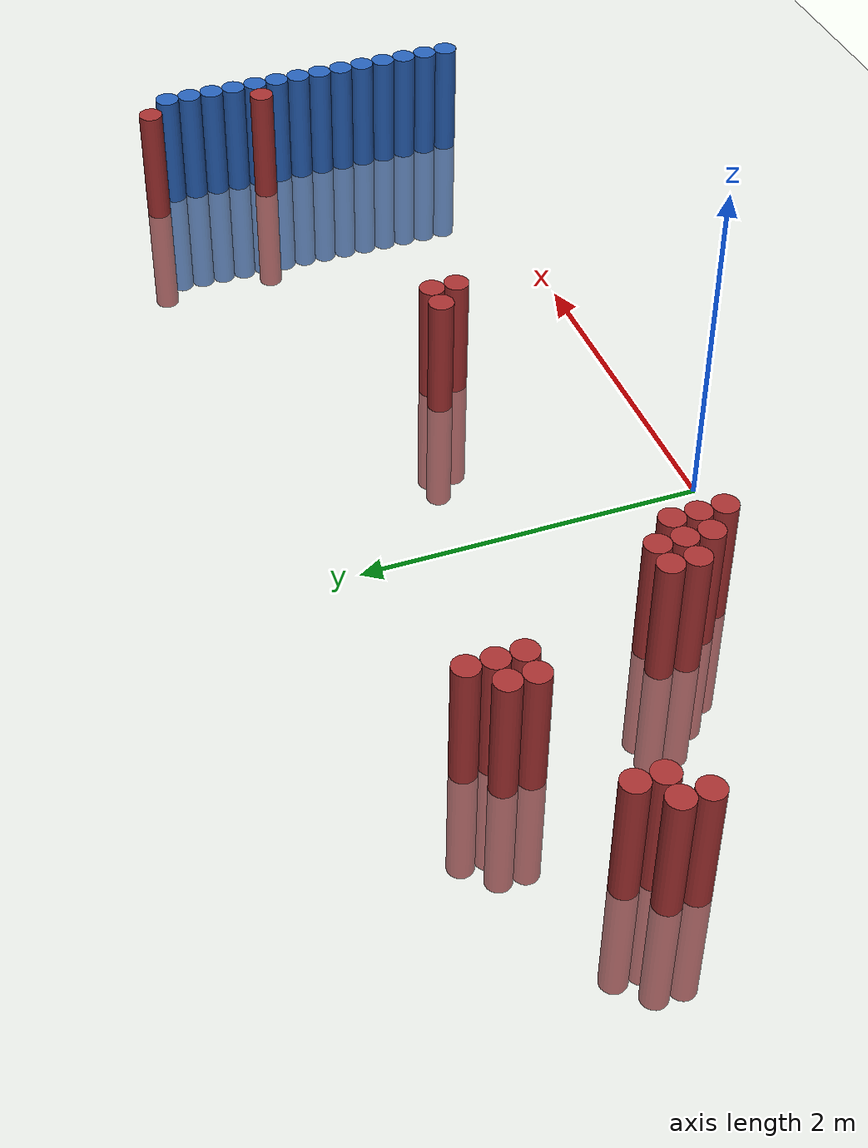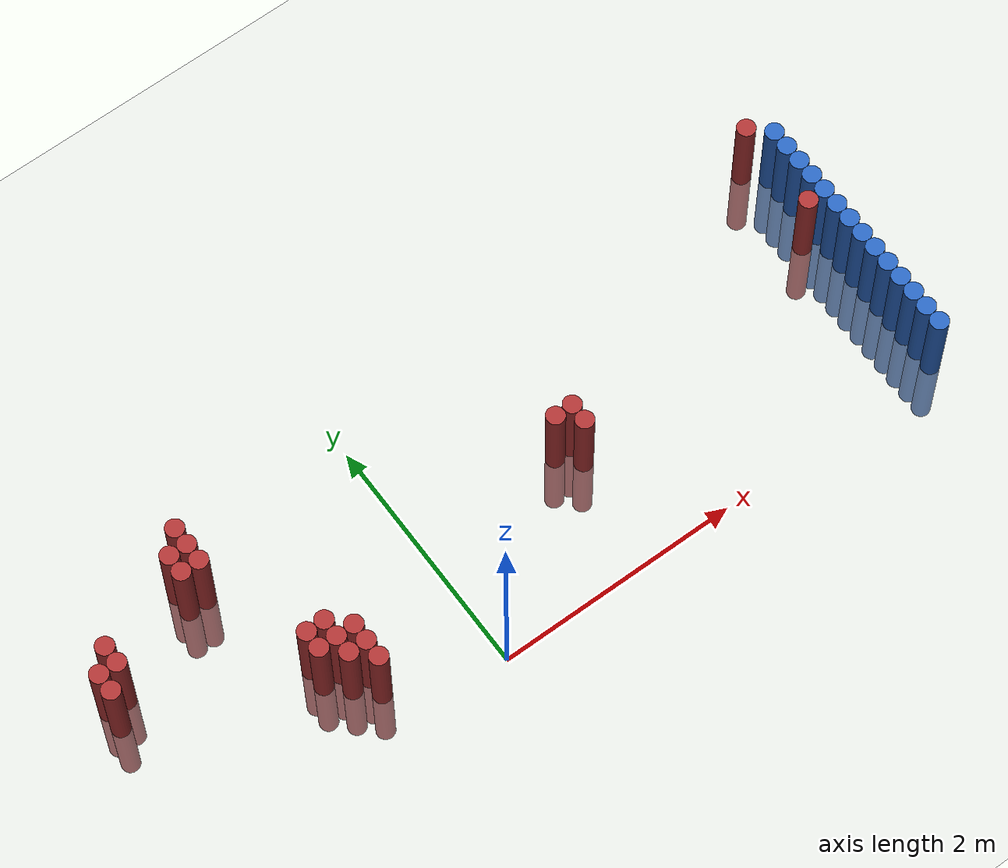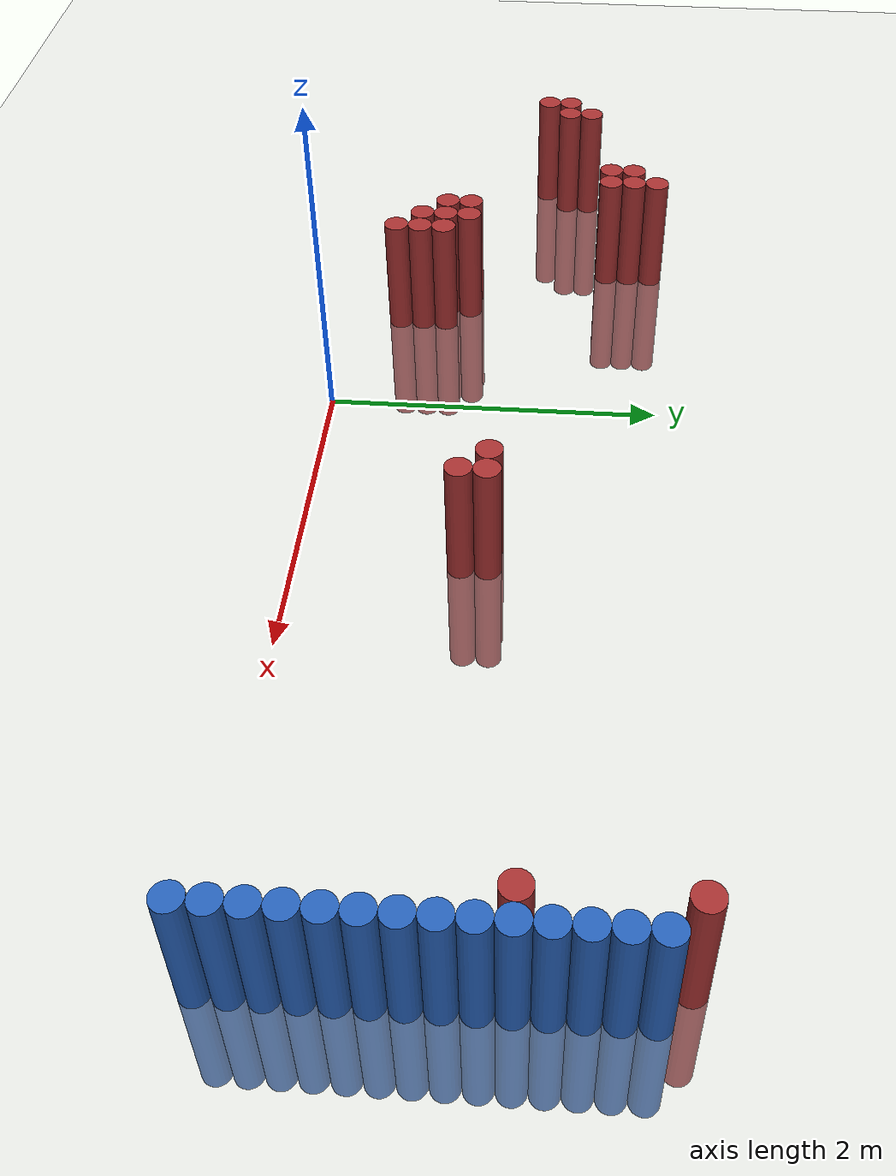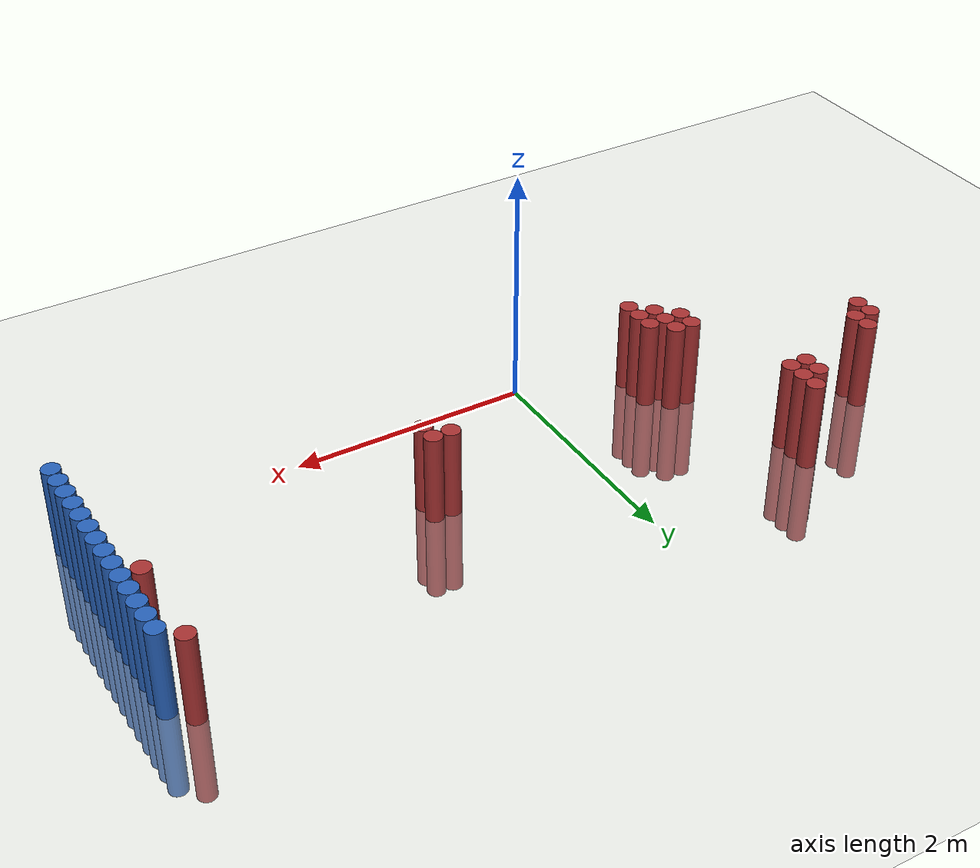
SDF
<sdf version="1.6">
 <world name="default">
  <model name="ground_plane">
   <static>1</static>
   <link name="link">
    <collision name="collision">
     <geometry><plane><normal>0 0 1</normal><size>100 100</size></plane></geometry>
     <surface><friction><ode><mu>100</mu><mu2>50</mu2></ode></friction></surface>
    </collision>
    <visual name="visual">
     <cast_shadows>0</cast_shadows>
     <geometry><plane><normal>0 0 1</normal><size>100 100</size></plane></geometry>
     <material>
      <script><uri>file://media/materials/scripts/gazebo.material</uri><name>Gazebo/Grey</name></script>
     </material>
    </visual>
   </link>
  </model>
  <model name="unit_cylinder_116">
   <static>1</static>
   <pose>3.925000 0.175000 0.000000 0.000000 0.000000 0.000000</pose>
   <link name="link">
    <inertial>
     <mass>1</mass>
     <inertia><ixx>0.145833</ixx><ixy>0</ixy><ixz>0</ixz><iyy>0.145833</iyy><iyz>0</iyz><izz>0.125</izz></inertia>
    </inertial>
    <collision name="collision">
     <geometry><cylinder><radius>0.075000</radius><length>1.5</length></cylinder></geometry>
    </collision>
    <visual name="visual">
     <geometry><cylinder><radius>0.075000</radius><length>1.5</length></cylinder></geometry>
     <material>
      <ambient>0.152000 0.379000 0.720000 1</ambient>
      <diffuse>0.152000 0.379000 0.720000 1</diffuse>
     </material>
     <material>
      <script><name>Gazebo/Grey</name><uri>file://media/materials/scripts/gazebo.material</uri></script>
     </material>
    </visual>
   </link>
  </model>
  <model name="unit_cylinder_118">
   <static>1</static>
   <pose>3.925000 0.325000 0.000000 0.000000 0.000000 0.000000</pose>
   <link name="link">
    <inertial>
     <mass>1</mass>
     <inertia><ixx>0.145833</ixx><ixy>0</ixy><ixz>0</ixz><iyy>0.145833</iyy><iyz>0</iyz><izz>0.125</izz></inertia>
    </inertial>
    <collision name="collision">
     <geometry><cylinder><radius>0.075000</radius><length>1.5</length></cylinder></geometry>
    </collision>
    <visual name="visual">
     <geometry><cylinder><radius>0.075000</radius><length>1.5</length></cylinder></geometry>
     <material>
      <ambient>0.152000 0.379000 0.720000 1</ambient>
      <diffuse>0.152000 0.379000 0.720000 1</diffuse>
     </material>
     <material>
      <script><name>Gazebo/Grey</name><uri>file://media/materials/scripts/gazebo.material</uri></script>
     </material>
    </visual>
   </link>
  </model>
  <model name="unit_cylinder_120">
   <static>1</static>
   <pose>3.925000 0.475000 0.000000 0.000000 0.000000 0.000000</pose>
   <link name="link">
    <inertial>
     <mass>1</mass>
     <inertia><ixx>0.145833</ixx><ixy>0</ixy><ixz>0</ixz><iyy>0.145833</iyy><iyz>0</iyz><izz>0.125</izz></inertia>
    </inertial>
    <collision name="collision">
     <geometry><cylinder><radius>0.075000</radius><length>1.5</length></cylinder></geometry>
    </collision>
    <visual name="visual">
     <geometry><cylinder><radius>0.075000</radius><length>1.5</length></cylinder></geometry>
     <material>
      <ambient>0.152000 0.379000 0.720000 1</ambient>
      <diffuse>0.152000 0.379000 0.720000 1</diffuse>
     </material>
     <material>
      <script><name>Gazebo/Grey</name><uri>file://media/materials/scripts/gazebo.material</uri></script>
     </material>
    </visual>
   </link>
  </model>
  <model name="unit_cylinder_122">
   <static>1</static>
   <pose>3.925000 0.625000 0.000000 0.000000 0.000000 0.000000</pose>
   <link name="link">
    <inertial>
     <mass>1</mass>
     <inertia><ixx>0.145833</ixx><ixy>0</ixy><ixz>0</ixz><iyy>0.145833</iyy><iyz>0</iyz><izz>0.125</izz></inertia>
    </inertial>
    <collision name="collision">
     <geometry><cylinder><radius>0.075000</radius><length>1.5</length></cylinder></geometry>
    </collision>
    <visual name="visual">
     <geometry><cylinder><radius>0.075000</radius><length>1.5</length></cylinder></geometry>
     <material>
      <ambient>0.152000 0.379000 0.720000 1</ambient>
      <diffuse>0.152000 0.379000 0.720000 1</diffuse>
     </material>
     <material>
      <script><name>Gazebo/Grey</name><uri>file://media/materials/scripts/gazebo.material</uri></script>
     </material>
    </visual>
   </link>
  </model>
  <model name="unit_cylinder_124">
   <static>1</static>
   <pose>3.925000 0.775000 0.000000 0.000000 0.000000 0.000000</pose>
   <link name="link">
    <inertial>
     <mass>1</mass>
     <inertia><ixx>0.145833</ixx><ixy>0</ixy><ixz>0</ixz><iyy>0.145833</iyy><iyz>0</iyz><izz>0.125</izz></inertia>
    </inertial>
    <collision name="collision">
     <geometry><cylinder><radius>0.075000</radius><length>1.5</length></cylinder></geometry>
    </collision>
    <visual name="visual">
     <geometry><cylinder><radius>0.075000</radius><length>1.5</length></cylinder></geometry>
     <material>
      <ambient>0.152000 0.379000 0.720000 1</ambient>
      <diffuse>0.152000 0.379000 0.720000 1</diffuse>
     </material>
     <material>
      <script><name>Gazebo/Grey</name><uri>file://media/materials/scripts/gazebo.material</uri></script>
     </material>
    </visual>
   </link>
  </model>
  <model name="unit_cylinder_126">
   <static>1</static>
   <pose>3.925000 0.925000 0.000000 0.000000 0.000000 0.000000</pose>
   <link name="link">
    <inertial>
     <mass>1</mass>
     <inertia><ixx>0.145833</ixx><ixy>0</ixy><ixz>0</ixz><iyy>0.145833</iyy><iyz>0</iyz><izz>0.125</izz></inertia>
    </inertial>
    <collision name="collision">
     <geometry><cylinder><radius>0.075000</radius><length>1.5</length></cylinder></geometry>
    </collision>
    <visual name="visual">
     <geometry><cylinder><radius>0.075000</radius><length>1.5</length></cylinder></geometry>
     <material>
      <ambient>0.152000 0.379000 0.720000 1</ambient>
      <diffuse>0.152000 0.379000 0.720000 1</diffuse>
     </material>
     <material>
      <script><name>Gazebo/Grey</name><uri>file://media/materials/scripts/gazebo.material</uri></script>
     </material>
    </visual>
   </link>
  </model>
  <model name="unit_cylinder_128">
   <static>1</static>
   <pose>3.925000 1.075000 0.000000 0.000000 0.000000 0.000000</pose>
   <link name="link">
    <inertial>
     <mass>1</mass>
     <inertia><ixx>0.145833</ixx><ixy>0</ixy><ixz>0</ixz><iyy>0.145833</iyy><iyz>0</iyz><izz>0.125</izz></inertia>
    </inertial>
    <collision name="collision">
     <geometry><cylinder><radius>0.075000</radius><length>1.5</length></cylinder></geometry>
    </collision>
    <visual name="visual">
     <geometry><cylinder><radius>0.075000</radius><length>1.5</length></cylinder></geometry>
     <material>
      <ambient>0.152000 0.379000 0.720000 1</ambient>
      <diffuse>0.152000 0.379000 0.720000 1</diffuse>
     </material>
     <material>
      <script><name>Gazebo/Grey</name><uri>file://media/materials/scripts/gazebo.material</uri></script>
     </material>
    </visual>
   </link>
  </model>
  <model name="unit_cylinder_130">
   <static>1</static>
   <pose>3.925000 1.225000 0.000000 0.000000 0.000000 0.000000</pose>
   <link name="link">
    <inertial>
     <mass>1</mass>
     <inertia><ixx>0.145833</ixx><ixy>0</ixy><ixz>0</ixz><iyy>0.145833</iyy><iyz>0</iyz><izz>0.125</izz></inertia>
    </inertial>
    <collision name="collision">
     <geometry><cylinder><radius>0.075000</radius><length>1.5</length></cylinder></geometry>
    </collision>
    <visual name="visual">
     <geometry><cylinder><radius>0.075000</radius><length>1.5</length></cylinder></geometry>
     <material>
      <ambient>0.152000 0.379000 0.720000 1</ambient>
      <diffuse>0.152000 0.379000 0.720000 1</diffuse>
     </material>
     <material>
      <script><name>Gazebo/Grey</name><uri>file://media/materials/scripts/gazebo.material</uri></script>
     </material>
    </visual>
   </link>
  </model>
  <model name="unit_cylinder_132">
   <static>1</static>
   <pose>3.925000 1.375000 0.000000 0.000000 0.000000 0.000000</pose>
   <link name="link">
    <inertial>
     <mass>1</mass>
     <inertia><ixx>0.145833</ixx><ixy>0</ixy><ixz>0</ixz><iyy>0.145833</iyy><iyz>0</iyz><izz>0.125</izz></inertia>
    </inertial>
    <collision name="collision">
     <geometry><cylinder><radius>0.075000</radius><length>1.5</length></cylinder></geometry>
    </collision>
    <visual name="visual">
     <geometry><cylinder><radius>0.075000</radius><length>1.5</length></cylinder></geometry>
     <material>
      <ambient>0.152000 0.379000 0.720000 1</ambient>
      <diffuse>0.152000 0.379000 0.720000 1</diffuse>
     </material>
     <material>
      <script><name>Gazebo/Grey</name><uri>file://media/materials/scripts/gazebo.material</uri></script>
     </material>
    </visual>
   </link>
  </model>
  <model name="unit_cylinder_134">
   <static>1</static>
   <pose>3.925000 1.525000 0.000000 0.000000 0.000000 0.000000</pose>
   <link name="link">
    <inertial>
     <mass>1</mass>
     <inertia><ixx>0.145833</ixx><ixy>0</ixy><ixz>0</ixz><iyy>0.145833</iyy><iyz>0</iyz><izz>0.125</izz></inertia>
    </inertial>
    <collision name="collision">
     <geometry><cylinder><radius>0.075000</radius><length>1.5</length></cylinder></geometry>
    </collision>
    <visual name="visual">
     <geometry><cylinder><radius>0.075000</radius><length>1.5</length></cylinder></geometry>
     <material>
      <ambient>0.152000 0.379000 0.720000 1</ambient>
      <diffuse>0.152000 0.379000 0.720000 1</diffuse>
     </material>
     <material>
      <script><name>Gazebo/Grey</name><uri>file://media/materials/scripts/gazebo.material</uri></script>
     </material>
    </visual>
   </link>
  </model>
  <model name="unit_cylinder_136">
   <static>1</static>
   <pose>3.925000 1.675000 0.000000 0.000000 0.000000 0.000000</pose>
   <link name="link">
    <inertial>
     <mass>1</mass>
     <inertia><ixx>0.145833</ixx><ixy>0</ixy><ixz>0</ixz><iyy>0.145833</iyy><iyz>0</iyz><izz>0.125</izz></inertia>
    </inertial>
    <collision name="collision">
     <geometry><cylinder><radius>0.075000</radius><length>1.5</length></cylinder></geometry>
    </collision>
    <visual name="visual">
     <geometry><cylinder><radius>0.075000</radius><length>1.5</length></cylinder></geometry>
     <material>
      <ambient>0.152000 0.379000 0.720000 1</ambient>
      <diffuse>0.152000 0.379000 0.720000 1</diffuse>
     </material>
     <material>
      <script><name>Gazebo/Grey</name><uri>file://media/materials/scripts/gazebo.material</uri></script>
     </material>
    </visual>
   </link>
  </model>
  <model name="unit_cylinder_138">
   <static>1</static>
   <pose>3.925000 1.825000 0.000000 0.000000 0.000000 0.000000</pose>
   <link name="link">
    <inertial>
     <mass>1</mass>
     <inertia><ixx>0.145833</ixx><ixy>0</ixy><ixz>0</ixz><iyy>0.145833</iyy><iyz>0</iyz><izz>0.125</izz></inertia>
    </inertial>
    <collision name="collision">
     <geometry><cylinder><radius>0.075000</radius><length>1.5</length></cylinder></geometry>
    </collision>
    <visual name="visual">
     <geometry><cylinder><radius>0.075000</radius><length>1.5</length></cylinder></geometry>
     <material>
      <ambient>0.152000 0.379000 0.720000 1</ambient>
      <diffuse>0.152000 0.379000 0.720000 1</diffuse>
     </material>
     <material>
      <script><name>Gazebo/Grey</name><uri>file://media/materials/scripts/gazebo.material</uri></script>
     </material>
    </visual>
   </link>
  </model>
  <model name="unit_cylinder_140">
   <static>1</static>
   <pose>3.925000 1.975000 0.000000 0.000000 0.000000 0.000000</pose>
   <link name="link">
    <inertial>
     <mass>1</mass>
     <inertia><ixx>0.145833</ixx><ixy>0</ixy><ixz>0</ixz><iyy>0.145833</iyy><iyz>0</iyz><izz>0.125</izz></inertia>
    </inertial>
    <collision name="collision">
     <geometry><cylinder><radius>0.075000</radius><length>1.5</length></cylinder></geometry>
    </collision>
    <visual name="visual">
     <geometry><cylinder><radius>0.075000</radius><length>1.5</length></cylinder></geometry>
     <material>
      <ambient>0.152000 0.379000 0.720000 1</ambient>
      <diffuse>0.152000 0.379000 0.720000 1</diffuse>
     </material>
     <material>
      <script><name>Gazebo/Grey</name><uri>file://media/materials/scripts/gazebo.material</uri></script>
     </material>
    </visual>
   </link>
  </model>
  <model name="unit_cylinder_276">
   <static>1</static>
   <pose>-2.525000 1.225000 0.000000 0.000000 0.000000 0.000000</pose>
   <link name="link">
    <inertial>
     <mass>1</mass>
     <inertia><ixx>0.145833</ixx><ixy>0</ixy><ixz>0</ixz><iyy>0.145833</iyy><iyz>0</iyz><izz>0.125</izz></inertia>
    </inertial>
    <collision name="collision">
     <geometry><cylinder><radius>0.075000</radius><length>1.5</length></cylinder></geometry>
    </collision>
    <visual name="visual">
     <geometry><cylinder><radius>0.075000</radius><length>1.5</length></cylinder></geometry>
     <material>
      <ambient>0.648000 0.192000 0.192000 1</ambient>
      <diffuse>0.648000 0.192000 0.192000 1</diffuse>
     </material>
     <material>
      <script><name>Gazebo/Grey</name><uri>file://media/materials/scripts/gazebo.material</uri></script>
     </material>
    </visual>
   </link>
  </model>
  <model name="unit_cylinder_277">
   <static>1</static>
   <pose>-2.525000 1.375000 0.000000 0.000000 0.000000 0.000000</pose>
   <link name="link">
    <inertial>
     <mass>1</mass>
     <inertia><ixx>0.145833</ixx><ixy>0</ixy><ixz>0</ixz><iyy>0.145833</iyy><iyz>0</iyz><izz>0.125</izz></inertia>
    </inertial>
    <collision name="collision">
     <geometry><cylinder><radius>0.075000</radius><length>1.5</length></cylinder></geometry>
    </collision>
    <visual name="visual">
     <geometry><cylinder><radius>0.075000</radius><length>1.5</length></cylinder></geometry>
     <material>
      <ambient>0.648000 0.192000 0.192000 1</ambient>
      <diffuse>0.648000 0.192000 0.192000 1</diffuse>
     </material>
     <material>
      <script><name>Gazebo/Grey</name><uri>file://media/materials/scripts/gazebo.material</uri></script>
     </material>
    </visual>
   </link>
  </model>
  <model name="unit_cylinder_278">
   <static>1</static>
   <pose>-2.375000 1.375000 0.000000 0.000000 0.000000 0.000000</pose>
   <link name="link">
    <inertial>
     <mass>1</mass>
     <inertia><ixx>0.145833</ixx><ixy>0</ixy><ixz>0</ixz><iyy>0.145833</iyy><iyz>0</iyz><izz>0.125</izz></inertia>
    </inertial>
    <collision name="collision">
     <geometry><cylinder><radius>0.075000</radius><length>1.5</length></cylinder></geometry>
    </collision>
    <visual name="visual">
     <geometry><cylinder><radius>0.075000</radius><length>1.5</length></cylinder></geometry>
     <material>
      <ambient>0.648000 0.192000 0.192000 1</ambient>
      <diffuse>0.648000 0.192000 0.192000 1</diffuse>
     </material>
     <material>
      <script><name>Gazebo/Grey</name><uri>file://media/materials/scripts/gazebo.material</uri></script>
     </material>
    </visual>
   </link>
  </model>
  <model name="unit_cylinder_279">
   <static>1</static>
   <pose>-2.375000 1.525000 0.000000 0.000000 0.000000 0.000000</pose>
   <link name="link">
    <inertial>
     <mass>1</mass>
     <inertia><ixx>0.145833</ixx><ixy>0</ixy><ixz>0</ixz><iyy>0.145833</iyy><iyz>0</iyz><izz>0.125</izz></inertia>
    </inertial>
    <collision name="collision">
     <geometry><cylinder><radius>0.075000</radius><length>1.5</length></cylinder></geometry>
    </collision>
    <visual name="visual">
     <geometry><cylinder><radius>0.075000</radius><length>1.5</length></cylinder></geometry>
     <material>
      <ambient>0.648000 0.192000 0.192000 1</ambient>
      <diffuse>0.648000 0.192000 0.192000 1</diffuse>
     </material>
     <material>
      <script><name>Gazebo/Grey</name><uri>file://media/materials/scripts/gazebo.material</uri></script>
     </material>
    </visual>
   </link>
  </model>
  <model name="unit_cylinder_280">
   <static>1</static>
   <pose>-1.625000 1.675000 0.000000 0.000000 0.000000 0.000000</pose>
   <link name="link">
    <inertial>
     <mass>1</mass>
     <inertia><ixx>0.145833</ixx><ixy>0</ixy><ixz>0</ixz><iyy>0.145833</iyy><iyz>0</iyz><izz>0.125</izz></inertia>
    </inertial>
    <collision name="collision">
     <geometry><cylinder><radius>0.075000</radius><length>1.5</length></cylinder></geometry>
    </collision>
    <visual name="visual">
     <geometry><cylinder><radius>0.075000</radius><length>1.5</length></cylinder></geometry>
     <material>
      <ambient>0.648000 0.192000 0.192000 1</ambient>
      <diffuse>0.648000 0.192000 0.192000 1</diffuse>
     </material>
     <material>
      <script><name>Gazebo/Grey</name><uri>file://media/materials/scripts/gazebo.material</uri></script>
     </material>
    </visual>
   </link>
  </model>
  <model name="unit_cylinder_281">
   <static>1</static>
   <pose>-1.625000 1.825000 0.000000 0.000000 0.000000 0.000000</pose>
   <link name="link">
    <inertial>
     <mass>1</mass>
     <inertia><ixx>0.145833</ixx><ixy>0</ixy><ixz>0</ixz><iyy>0.145833</iyy><iyz>0</iyz><izz>0.125</izz></inertia>
    </inertial>
    <collision name="collision">
     <geometry><cylinder><radius>0.075000</radius><length>1.5</length></cylinder></geometry>
    </collision>
    <visual name="visual">
     <geometry><cylinder><radius>0.075000</radius><length>1.5</length></cylinder></geometry>
     <material>
      <ambient>0.648000 0.192000 0.192000 1</ambient>
      <diffuse>0.648000 0.192000 0.192000 1</diffuse>
     </material>
     <material>
      <script><name>Gazebo/Grey</name><uri>file://media/materials/scripts/gazebo.material</uri></script>
     </material>
    </visual>
   </link>
  </model>
  <model name="unit_cylinder_284">
   <static>1</static>
   <pose>-1.475000 1.675000 0.000000 0.000000 0.000000 0.000000</pose>
   <link name="link">
    <inertial>
     <mass>1</mass>
     <inertia><ixx>0.145833</ixx><ixy>0</ixy><ixz>0</ixz><iyy>0.145833</iyy><iyz>0</iyz><izz>0.125</izz></inertia>
    </inertial>
    <collision name="collision">
     <geometry><cylinder><radius>0.075000</radius><length>1.5</length></cylinder></geometry>
    </collision>
    <visual name="visual">
     <geometry><cylinder><radius>0.075000</radius><length>1.5</length></cylinder></geometry>
     <material>
      <ambient>0.648000 0.192000 0.192000 1</ambient>
      <diffuse>0.648000 0.192000 0.192000 1</diffuse>
     </material>
     <material>
      <script><name>Gazebo/Grey</name><uri>file://media/materials/scripts/gazebo.material</uri></script>
     </material>
    </visual>
   </link>
  </model>
  <model name="unit_cylinder_285">
   <static>1</static>
   <pose>-1.475000 1.825000 0.000000 0.000000 0.000000 0.000000</pose>
   <link name="link">
    <inertial>
     <mass>1</mass>
     <inertia><ixx>0.145833</ixx><ixy>0</ixy><ixz>0</ixz><iyy>0.145833</iyy><iyz>0</iyz><izz>0.125</izz></inertia>
    </inertial>
    <collision name="collision">
     <geometry><cylinder><radius>0.075000</radius><length>1.5</length></cylinder></geometry>
    </collision>
    <visual name="visual">
     <geometry><cylinder><radius>0.075000</radius><length>1.5</length></cylinder></geometry>
     <material>
      <ambient>0.648000 0.192000 0.192000 1</ambient>
      <diffuse>0.648000 0.192000 0.192000 1</diffuse>
     </material>
     <material>
      <script><name>Gazebo/Grey</name><uri>file://media/materials/scripts/gazebo.material</uri></script>
     </material>
    </visual>
   </link>
  </model>
  <model name="unit_cylinder_286">
   <static>1</static>
   <pose>-1.475000 1.975000 0.000000 0.000000 0.000000 0.000000</pose>
   <link name="link">
    <inertial>
     <mass>1</mass>
     <inertia><ixx>0.145833</ixx><ixy>0</ixy><ixz>0</ixz><iyy>0.145833</iyy><iyz>0</iyz><izz>0.125</izz></inertia>
    </inertial>
    <collision name="collision">
     <geometry><cylinder><radius>0.075000</radius><length>1.5</length></cylinder></geometry>
    </collision>
    <visual name="visual">
     <geometry><cylinder><radius>0.075000</radius><length>1.5</length></cylinder></geometry>
     <material>
      <ambient>0.648000 0.192000 0.192000 1</ambient>
      <diffuse>0.648000 0.192000 0.192000 1</diffuse>
     </material>
     <material>
      <script><name>Gazebo/Grey</name><uri>file://media/materials/scripts/gazebo.material</uri></script>
     </material>
    </visual>
   </link>
  </model>
  <model name="unit_cylinder_291">
   <static>1</static>
   <pose>-1.175000 0.625000 0.000000 0.000000 0.000000 0.000000</pose>
   <link name="link">
    <inertial>
     <mass>1</mass>
     <inertia><ixx>0.145833</ixx><ixy>0</ixy><ixz>0</ixz><iyy>0.145833</iyy><iyz>0</iyz><izz>0.125</izz></inertia>
    </inertial>
    <collision name="collision">
     <geometry><cylinder><radius>0.075000</radius><length>1.5</length></cylinder></geometry>
    </collision>
    <visual name="visual">
     <geometry><cylinder><radius>0.075000</radius><length>1.5</length></cylinder></geometry>
     <material>
      <ambient>0.648000 0.192000 0.192000 1</ambient>
      <diffuse>0.648000 0.192000 0.192000 1</diffuse>
     </material>
     <material>
      <script><name>Gazebo/Grey</name><uri>file://media/materials/scripts/gazebo.material</uri></script>
     </material>
    </visual>
   </link>
  </model>
  <model name="unit_cylinder_292">
   <static>1</static>
   <pose>-1.175000 0.775000 0.000000 0.000000 0.000000 0.000000</pose>
   <link name="link">
    <inertial>
     <mass>1</mass>
     <inertia><ixx>0.145833</ixx><ixy>0</ixy><ixz>0</ixz><iyy>0.145833</iyy><iyz>0</iyz><izz>0.125</izz></inertia>
    </inertial>
    <collision name="collision">
     <geometry><cylinder><radius>0.075000</radius><length>1.5</length></cylinder></geometry>
    </collision>
    <visual name="visual">
     <geometry><cylinder><radius>0.075000</radius><length>1.5</length></cylinder></geometry>
     <material>
      <ambient>0.648000 0.192000 0.192000 1</ambient>
      <diffuse>0.648000 0.192000 0.192000 1</diffuse>
     </material>
     <material>
      <script><name>Gazebo/Grey</name><uri>file://media/materials/scripts/gazebo.material</uri></script>
     </material>
    </visual>
   </link>
  </model>
  <model name="unit_cylinder_295">
   <static>1</static>
   <pose>-1.025000 0.475000 0.000000 0.000000 0.000000 0.000000</pose>
   <link name="link">
    <inertial>
     <mass>1</mass>
     <inertia><ixx>0.145833</ixx><ixy>0</ixy><ixz>0</ixz><iyy>0.145833</iyy><iyz>0</iyz><izz>0.125</izz></inertia>
    </inertial>
    <collision name="collision">
     <geometry><cylinder><radius>0.075000</radius><length>1.5</length></cylinder></geometry>
    </collision>
    <visual name="visual">
     <geometry><cylinder><radius>0.075000</radius><length>1.5</length></cylinder></geometry>
     <material>
      <ambient>0.648000 0.192000 0.192000 1</ambient>
      <diffuse>0.648000 0.192000 0.192000 1</diffuse>
     </material>
     <material>
      <script><name>Gazebo/Grey</name><uri>file://media/materials/scripts/gazebo.material</uri></script>
     </material>
    </visual>
   </link>
  </model>
  <model name="unit_cylinder_296">
   <static>1</static>
   <pose>-1.025000 0.625000 0.000000 0.000000 0.000000 0.000000</pose>
   <link name="link">
    <inertial>
     <mass>1</mass>
     <inertia><ixx>0.145833</ixx><ixy>0</ixy><ixz>0</ixz><iyy>0.145833</iyy><iyz>0</iyz><izz>0.125</izz></inertia>
    </inertial>
    <collision name="collision">
     <geometry><cylinder><radius>0.075000</radius><length>1.5</length></cylinder></geometry>
    </collision>
    <visual name="visual">
     <geometry><cylinder><radius>0.075000</radius><length>1.5</length></cylinder></geometry>
     <material>
      <ambient>0.648000 0.192000 0.192000 1</ambient>
      <diffuse>0.648000 0.192000 0.192000 1</diffuse>
     </material>
     <material>
      <script><name>Gazebo/Grey</name><uri>file://media/materials/scripts/gazebo.material</uri></script>
     </material>
    </visual>
   </link>
  </model>
  <model name="unit_cylinder_297">
   <static>1</static>
   <pose>-1.025000 0.775000 0.000000 0.000000 0.000000 0.000000</pose>
   <link name="link">
    <inertial>
     <mass>1</mass>
     <inertia><ixx>0.145833</ixx><ixy>0</ixy><ixz>0</ixz><iyy>0.145833</iyy><iyz>0</iyz><izz>0.125</izz></inertia>
    </inertial>
    <collision name="collision">
     <geometry><cylinder><radius>0.075000</radius><length>1.5</length></cylinder></geometry>
    </collision>
    <visual name="visual">
     <geometry><cylinder><radius>0.075000</radius><length>1.5</length></cylinder></geometry>
     <material>
      <ambient>0.648000 0.192000 0.192000 1</ambient>
      <diffuse>0.648000 0.192000 0.192000 1</diffuse>
     </material>
     <material>
      <script><name>Gazebo/Grey</name><uri>file://media/materials/scripts/gazebo.material</uri></script>
     </material>
    </visual>
   </link>
  </model>
  <model name="unit_cylinder_300">
   <static>1</static>
   <pose>-0.875000 0.325000 0.000000 0.000000 0.000000 0.000000</pose>
   <link name="link">
    <inertial>
     <mass>1</mass>
     <inertia><ixx>0.145833</ixx><ixy>0</ixy><ixz>0</ixz><iyy>0.145833</iyy><iyz>0</iyz><izz>0.125</izz></inertia>
    </inertial>
    <collision name="collision">
     <geometry><cylinder><radius>0.075000</radius><length>1.5</length></cylinder></geometry>
    </collision>
    <visual name="visual">
     <geometry><cylinder><radius>0.075000</radius><length>1.5</length></cylinder></geometry>
     <material>
      <ambient>0.648000 0.192000 0.192000 1</ambient>
      <diffuse>0.648000 0.192000 0.192000 1</diffuse>
     </material>
     <material>
      <script><name>Gazebo/Grey</name><uri>file://media/materials/scripts/gazebo.material</uri></script>
     </material>
    </visual>
   </link>
  </model>
  <model name="unit_cylinder_301">
   <static>1</static>
   <pose>-0.875000 0.475000 0.000000 0.000000 0.000000 0.000000</pose>
   <link name="link">
    <inertial>
     <mass>1</mass>
     <inertia><ixx>0.145833</ixx><ixy>0</ixy><ixz>0</ixz><iyy>0.145833</iyy><iyz>0</iyz><izz>0.125</izz></inertia>
    </inertial>
    <collision name="collision">
     <geometry><cylinder><radius>0.075000</radius><length>1.5</length></cylinder></geometry>
    </collision>
    <visual name="visual">
     <geometry><cylinder><radius>0.075000</radius><length>1.5</length></cylinder></geometry>
     <material>
      <ambient>0.648000 0.192000 0.192000 1</ambient>
      <diffuse>0.648000 0.192000 0.192000 1</diffuse>
     </material>
     <material>
      <script><name>Gazebo/Grey</name><uri>file://media/materials/scripts/gazebo.material</uri></script>
     </material>
    </visual>
   </link>
  </model>
  <model name="unit_cylinder_302">
   <static>1</static>
   <pose>-0.875000 0.625000 0.000000 0.000000 0.000000 0.000000</pose>
   <link name="link">
    <inertial>
     <mass>1</mass>
     <inertia><ixx>0.145833</ixx><ixy>0</ixy><ixz>0</ixz><iyy>0.145833</iyy><iyz>0</iyz><izz>0.125</izz></inertia>
    </inertial>
    <collision name="collision">
     <geometry><cylinder><radius>0.075000</radius><length>1.5</length></cylinder></geometry>
    </collision>
    <visual name="visual">
     <geometry><cylinder><radius>0.075000</radius><length>1.5</length></cylinder></geometry>
     <material>
      <ambient>0.648000 0.192000 0.192000 1</ambient>
      <diffuse>0.648000 0.192000 0.192000 1</diffuse>
     </material>
     <material>
      <script><name>Gazebo/Grey</name><uri>file://media/materials/scripts/gazebo.material</uri></script>
     </material>
    </visual>
   </link>
  </model>
  <model name="unit_cylinder_324">
   <static>1</static>
   <pose>1.225000 1.075000 0.000000 0.000000 0.000000 0.000000</pose>
   <link name="link">
    <inertial>
     <mass>1</mass>
     <inertia><ixx>0.145833</ixx><ixy>0</ixy><ixz>0</ixz><iyy>0.145833</iyy><iyz>0</iyz><izz>0.125</izz></inertia>
    </inertial>
    <collision name="collision">
     <geometry><cylinder><radius>0.075000</radius><length>1.5</length></cylinder></geometry>
    </collision>
    <visual name="visual">
     <geometry><cylinder><radius>0.075000</radius><length>1.5</length></cylinder></geometry>
     <material>
      <ambient>0.648000 0.192000 0.192000 1</ambient>
      <diffuse>0.648000 0.192000 0.192000 1</diffuse>
     </material>
     <material>
      <script><name>Gazebo/Grey</name><uri>file://media/materials/scripts/gazebo.material</uri></script>
     </material>
    </visual>
   </link>
  </model>
  <model name="unit_cylinder_331">
   <static>1</static>
   <pose>1.375000 0.925000 0.000000 0.000000 0.000000 0.000000</pose>
   <link name="link">
    <inertial>
     <mass>1</mass>
     <inertia><ixx>0.145833</ixx><ixy>0</ixy><ixz>0</ixz><iyy>0.145833</iyy><iyz>0</iyz><izz>0.125</izz></inertia>
    </inertial>
    <collision name="collision">
     <geometry><cylinder><radius>0.075000</radius><length>1.5</length></cylinder></geometry>
    </collision>
    <visual name="visual">
     <geometry><cylinder><radius>0.075000</radius><length>1.5</length></cylinder></geometry>
     <material>
      <ambient>0.648000 0.192000 0.192000 1</ambient>
      <diffuse>0.648000 0.192000 0.192000 1</diffuse>
     </material>
     <material>
      <script><name>Gazebo/Grey</name><uri>file://media/materials/scripts/gazebo.material</uri></script>
     </material>
    </visual>
   </link>
  </model>
  <model name="unit_cylinder_332">
   <static>1</static>
   <pose>1.375000 1.075000 0.000000 0.000000 0.000000 0.000000</pose>
   <link name="link">
    <inertial>
     <mass>1</mass>
     <inertia><ixx>0.145833</ixx><ixy>0</ixy><ixz>0</ixz><iyy>0.145833</iyy><iyz>0</iyz><izz>0.125</izz></inertia>
    </inertial>
    <collision name="collision">
     <geometry><cylinder><radius>0.075000</radius><length>1.5</length></cylinder></geometry>
    </collision>
    <visual name="visual">
     <geometry><cylinder><radius>0.075000</radius><length>1.5</length></cylinder></geometry>
     <material>
      <ambient>0.648000 0.192000 0.192000 1</ambient>
      <diffuse>0.648000 0.192000 0.192000 1</diffuse>
     </material>
     <material>
      <script><name>Gazebo/Grey</name><uri>file://media/materials/scripts/gazebo.material</uri></script>
     </material>
    </visual>
   </link>
  </model>
  <model name="unit_cylinder_384">
   <static>1</static>
   <pose>3.775000 1.375000 0.000000 0.000000 0.000000 0.000000</pose>
   <link name="link">
    <inertial>
     <mass>1</mass>
     <inertia><ixx>0.145833</ixx><ixy>0</ixy><ixz>0</ixz><iyy>0.145833</iyy><iyz>0</iyz><izz>0.125</izz></inertia>
    </inertial>
    <collision name="collision">
     <geometry><cylinder><radius>0.075000</radius><length>1.5</length></cylinder></geometry>
    </collision>
    <visual name="visual">
     <geometry><cylinder><radius>0.075000</radius><length>1.5</length></cylinder></geometry>
     <material>
      <ambient>0.648000 0.192000 0.192000 1</ambient>
      <diffuse>0.648000 0.192000 0.192000 1</diffuse>
     </material>
     <material>
      <script><name>Gazebo/Grey</name><uri>file://media/materials/scripts/gazebo.material</uri></script>
     </material>
    </visual>
   </link>
  </model>
  <model name="unit_cylinder_385">
   <static>1</static>
   <pose>3.775000 2.125000 0.000000 0.000000 0.000000 0.000000</pose>
   <link name="link">
    <inertial>
     <mass>1</mass>
     <inertia><ixx>0.145833</ixx><ixy>0</ixy><ixz>0</ixz><iyy>0.145833</iyy><iyz>0</iyz><izz>0.125</izz></inertia>
    </inertial>
    <collision name="collision">
     <geometry><cylinder><radius>0.075000</radius><length>1.5</length></cylinder></geometry>
    </collision>
    <visual name="visual">
     <geometry><cylinder><radius>0.075000</radius><length>1.5</length></cylinder></geometry>
     <material>
      <ambient>0.648000 0.192000 0.192000 1</ambient>
      <diffuse>0.648000 0.192000 0.192000 1</diffuse>
     </material>
     <material>
      <script><name>Gazebo/Grey</name><uri>file://media/materials/scripts/gazebo.material</uri></script>
     </material>
    </visual>
   </link>
  </model>
  <model name="unit_cylinder_405">
   <static>1</static>
   <pose>3.925000 0.025000 0.000000 0.000000 0.000000 0.000000</pose>
   <link name="link">
    <inertial>
     <mass>1</mass>
     <inertia><ixx>0.145833</ixx><ixy>0</ixy><ixz>0</ixz><iyy>0.145833</iyy><iyz>0</iyz><izz>0.125</izz></inertia>
    </inertial>
    <collision name="collision">
     <geometry><cylinder><radius>0.075000</radius><length>1.5</length></cylinder></geometry>
    </collision>
    <visual name="visual">
     <geometry><cylinder><radius>0.075000</radius><length>1.5</length></cylinder></geometry>
     <material>
      <ambient>0.152000 0.379000 0.720000 1</ambient>
      <diffuse>0.152000 0.379000 0.720000 1</diffuse>
     </material>
     <material>
      <script><name>Gazebo/Grey</name><uri>file://media/materials/scripts/gazebo.material</uri></script>
     </material>
    </visual>
   </link>
  </model>
  <model name="unit_cylinder_406">
   <static>1</static>
   <pose>3.925000 0.175000 0.000000 0.000000 0.000000 0.000000</pose>
   <link name="link">
    <inertial>
     <mass>1</mass>
     <inertia><ixx>0.145833</ixx><ixy>0</ixy><ixz>0</ixz><iyy>0.145833</iyy><iyz>0</iyz><izz>0.125</izz></inertia>
    </inertial>
    <collision name="collision">
     <geometry><cylinder><radius>0.075000</radius><length>1.5</length></cylinder></geometry>
    </collision>
    <visual name="visual">
     <geometry><cylinder><radius>0.075000</radius><length>1.5</length></cylinder></geometry>
     <material>
      <ambient>0.152000 0.379000 0.720000 1</ambient>
      <diffuse>0.152000 0.379000 0.720000 1</diffuse>
     </material>
     <material>
      <script><name>Gazebo/Grey</name><uri>file://media/materials/scripts/gazebo.material</uri></script>
     </material>
    </visual>
   </link>
  </model>
  <model name="unit_cylinder_407">
   <static>1</static>
   <pose>3.925000 0.325000 0.000000 0.000000 0.000000 0.000000</pose>
   <link name="link">
    <inertial>
     <mass>1</mass>
     <inertia><ixx>0.145833</ixx><ixy>0</ixy><ixz>0</ixz><iyy>0.145833</iyy><iyz>0</iyz><izz>0.125</izz></inertia>
    </inertial>
    <collision name="collision">
     <geometry><cylinder><radius>0.075000</radius><length>1.5</length></cylinder></geometry>
    </collision>
    <visual name="visual">
     <geometry><cylinder><radius>0.075000</radius><length>1.5</length></cylinder></geometry>
     <material>
      <ambient>0.152000 0.379000 0.720000 1</ambient>
      <diffuse>0.152000 0.379000 0.720000 1</diffuse>
     </material>
     <material>
      <script><name>Gazebo/Grey</name><uri>file://media/materials/scripts/gazebo.material</uri></script>
     </material>
    </visual>
   </link>
  </model>
  <model name="unit_cylinder_408">
   <static>1</static>
   <pose>3.925000 0.475000 0.000000 0.000000 0.000000 0.000000</pose>
   <link name="link">
    <inertial>
     <mass>1</mass>
     <inertia><ixx>0.145833</ixx><ixy>0</ixy><ixz>0</ixz><iyy>0.145833</iyy><iyz>0</iyz><izz>0.125</izz></inertia>
    </inertial>
    <collision name="collision">
     <geometry><cylinder><radius>0.075000</radius><length>1.5</length></cylinder></geometry>
    </collision>
    <visual name="visual">
     <geometry><cylinder><radius>0.075000</radius><length>1.5</length></cylinder></geometry>
     <material>
      <ambient>0.152000 0.379000 0.720000 1</ambient>
      <diffuse>0.152000 0.379000 0.720000 1</diffuse>
     </material>
     <material>
      <script><name>Gazebo/Grey</name><uri>file://media/materials/scripts/gazebo.material</uri></script>
     </material>
    </visual>
   </link>
  </model>
  <model name="unit_cylinder_409">
   <static>1</static>
   <pose>3.925000 0.625000 0.000000 0.000000 0.000000 0.000000</pose>
   <link name="link">
    <inertial>
     <mass>1</mass>
     <inertia><ixx>0.145833</ixx><ixy>0</ixy><ixz>0</ixz><iyy>0.145833</iyy><iyz>0</iyz><izz>0.125</izz></inertia>
    </inertial>
    <collision name="collision">
     <geometry><cylinder><radius>0.075000</radius><length>1.5</length></cylinder></geometry>
    </collision>
    <visual name="visual">
     <geometry><cylinder><radius>0.075000</radius><length>1.5</length></cylinder></geometry>
     <material>
      <ambient>0.152000 0.379000 0.720000 1</ambient>
      <diffuse>0.152000 0.379000 0.720000 1</diffuse>
     </material>
     <material>
      <script><name>Gazebo/Grey</name><uri>file://media/materials/scripts/gazebo.material</uri></script>
     </material>
    </visual>
   </link>
  </model>
  <model name="unit_cylinder_410">
   <static>1</static>
   <pose>3.925000 0.775000 0.000000 0.000000 0.000000 0.000000</pose>
   <link name="link">
    <inertial>
     <mass>1</mass>
     <inertia><ixx>0.145833</ixx><ixy>0</ixy><ixz>0</ixz><iyy>0.145833</iyy><iyz>0</iyz><izz>0.125</izz></inertia>
    </inertial>
    <collision name="collision">
     <geometry><cylinder><radius>0.075000</radius><length>1.5</length></cylinder></geometry>
    </collision>
    <visual name="visual">
     <geometry><cylinder><radius>0.075000</radius><length>1.5</length></cylinder></geometry>
     <material>
      <ambient>0.152000 0.379000 0.720000 1</ambient>
      <diffuse>0.152000 0.379000 0.720000 1</diffuse>
     </material>
     <material>
      <script><name>Gazebo/Grey</name><uri>file://media/materials/scripts/gazebo.material</uri></script>
     </material>
    </visual>
   </link>
  </model>
  <model name="unit_cylinder_411">
   <static>1</static>
   <pose>3.925000 0.925000 0.000000 0.000000 0.000000 0.000000</pose>
   <link name="link">
    <inertial>
     <mass>1</mass>
     <inertia><ixx>0.145833</ixx><ixy>0</ixy><ixz>0</ixz><iyy>0.145833</iyy><iyz>0</iyz><izz>0.125</izz></inertia>
    </inertial>
    <collision name="collision">
     <geometry><cylinder><radius>0.075000</radius><length>1.5</length></cylinder></geometry>
    </collision>
    <visual name="visual">
     <geometry><cylinder><radius>0.075000</radius><length>1.5</length></cylinder></geometry>
     <material>
      <ambient>0.152000 0.379000 0.720000 1</ambient>
      <diffuse>0.152000 0.379000 0.720000 1</diffuse>
     </material>
     <material>
      <script><name>Gazebo/Grey</name><uri>file://media/materials/scripts/gazebo.material</uri></script>
     </material>
    </visual>
   </link>
  </model>
  <model name="unit_cylinder_412">
   <static>1</static>
   <pose>3.925000 1.075000 0.000000 0.000000 0.000000 0.000000</pose>
   <link name="link">
    <inertial>
     <mass>1</mass>
     <inertia><ixx>0.145833</ixx><ixy>0</ixy><ixz>0</ixz><iyy>0.145833</iyy><iyz>0</iyz><izz>0.125</izz></inertia>
    </inertial>
    <collision name="collision">
     <geometry><cylinder><radius>0.075000</radius><length>1.5</length></cylinder></geometry>
    </collision>
    <visual name="visual">
     <geometry><cylinder><radius>0.075000</radius><length>1.5</length></cylinder></geometry>
     <material>
      <ambient>0.152000 0.379000 0.720000 1</ambient>
      <diffuse>0.152000 0.379000 0.720000 1</diffuse>
     </material>
     <material>
      <script><name>Gazebo/Grey</name><uri>file://media/materials/scripts/gazebo.material</uri></script>
     </material>
    </visual>
   </link>
  </model>
  <model name="unit_cylinder_413">
   <static>1</static>
   <pose>3.925000 1.225000 0.000000 0.000000 0.000000 0.000000</pose>
   <link name="link">
    <inertial>
     <mass>1</mass>
     <inertia><ixx>0.145833</ixx><ixy>0</ixy><ixz>0</ixz><iyy>0.145833</iyy><iyz>0</iyz><izz>0.125</izz></inertia>
    </inertial>
    <collision name="collision">
     <geometry><cylinder><radius>0.075000</radius><length>1.5</length></cylinder></geometry>
    </collision>
    <visual name="visual">
     <geometry><cylinder><radius>0.075000</radius><length>1.5</length></cylinder></geometry>
     <material>
      <ambient>0.152000 0.379000 0.720000 1</ambient>
      <diffuse>0.152000 0.379000 0.720000 1</diffuse>
     </material>
     <material>
      <script><name>Gazebo/Grey</name><uri>file://media/materials/scripts/gazebo.material</uri></script>
     </material>
    </visual>
   </link>
  </model>
  <model name="unit_cylinder_414">
   <static>1</static>
   <pose>3.925000 1.375000 0.000000 0.000000 0.000000 0.000000</pose>
   <link name="link">
    <inertial>
     <mass>1</mass>
     <inertia><ixx>0.145833</ixx><ixy>0</ixy><ixz>0</ixz><iyy>0.145833</iyy><iyz>0</iyz><izz>0.125</izz></inertia>
    </inertial>
    <collision name="collision">
     <geometry><cylinder><radius>0.075000</radius><length>1.5</length></cylinder></geometry>
    </collision>
    <visual name="visual">
     <geometry><cylinder><radius>0.075000</radius><length>1.5</length></cylinder></geometry>
     <material>
      <ambient>0.152000 0.379000 0.720000 1</ambient>
      <diffuse>0.152000 0.379000 0.720000 1</diffuse>
     </material>
     <material>
      <script><name>Gazebo/Grey</name><uri>file://media/materials/scripts/gazebo.material</uri></script>
     </material>
    </visual>
   </link>
  </model>
  <model name="unit_cylinder_415">
   <static>1</static>
   <pose>3.925000 1.525000 0.000000 0.000000 0.000000 0.000000</pose>
   <link name="link">
    <inertial>
     <mass>1</mass>
     <inertia><ixx>0.145833</ixx><ixy>0</ixy><ixz>0</ixz><iyy>0.145833</iyy><iyz>0</iyz><izz>0.125</izz></inertia>
    </inertial>
    <collision name="collision">
     <geometry><cylinder><radius>0.075000</radius><length>1.5</length></cylinder></geometry>
    </collision>
    <visual name="visual">
     <geometry><cylinder><radius>0.075000</radius><length>1.5</length></cylinder></geometry>
     <material>
      <ambient>0.152000 0.379000 0.720000 1</ambient>
      <diffuse>0.152000 0.379000 0.720000 1</diffuse>
     </material>
     <material>
      <script><name>Gazebo/Grey</name><uri>file://media/materials/scripts/gazebo.material</uri></script>
     </material>
    </visual>
   </link>
  </model>
  <model name="unit_cylinder_416">
   <static>1</static>
   <pose>3.925000 1.675000 0.000000 0.000000 0.000000 0.000000</pose>
   <link name="link">
    <inertial>
     <mass>1</mass>
     <inertia><ixx>0.145833</ixx><ixy>0</ixy><ixz>0</ixz><iyy>0.145833</iyy><iyz>0</iyz><izz>0.125</izz></inertia>
    </inertial>
    <collision name="collision">
     <geometry><cylinder><radius>0.075000</radius><length>1.5</length></cylinder></geometry>
    </collision>
    <visual name="visual">
     <geometry><cylinder><radius>0.075000</radius><length>1.5</length></cylinder></geometry>
     <material>
      <ambient>0.152000 0.379000 0.720000 1</ambient>
      <diffuse>0.152000 0.379000 0.720000 1</diffuse>
     </material>
     <material>
      <script><name>Gazebo/Grey</name><uri>file://media/materials/scripts/gazebo.material</uri></script>
     </material>
    </visual>
   </link>
  </model>
  <model name="unit_cylinder_417">
   <static>1</static>
   <pose>3.925000 1.825000 0.000000 0.000000 0.000000 0.000000</pose>
   <link name="link">
    <inertial>
     <mass>1</mass>
     <inertia><ixx>0.145833</ixx><ixy>0</ixy><ixz>0</ixz><iyy>0.145833</iyy><iyz>0</iyz><izz>0.125</izz></inertia>
    </inertial>
    <collision name="collision">
     <geometry><cylinder><radius>0.075000</radius><length>1.5</length></cylinder></geometry>
    </collision>
    <visual name="visual">
     <geometry><cylinder><radius>0.075000</radius><length>1.5</length></cylinder></geometry>
     <material>
      <ambient>0.152000 0.379000 0.720000 1</ambient>
      <diffuse>0.152000 0.379000 0.720000 1</diffuse>
     </material>
     <material>
      <script><name>Gazebo/Grey</name><uri>file://media/materials/scripts/gazebo.material</uri></script>
     </material>
    </visual>
   </link>
  </model>
  <model name="unit_cylinder_418">
   <static>1</static>
   <pose>3.925000 1.975000 0.000000 0.000000 0.000000 0.000000</pose>
   <link name="link">
    <inertial>
     <mass>1</mass>
     <inertia><ixx>0.145833</ixx><ixy>0</ixy><ixz>0</ixz><iyy>0.145833</iyy><iyz>0</iyz><izz>0.125</izz></inertia>
    </inertial>
    <collision name="collision">
     <geometry><cylinder><radius>0.075000</radius><length>1.5</length></cylinder></geometry>
    </collision>
    <visual name="visual">
     <geometry><cylinder><radius>0.075000</radius><length>1.5</length></cylinder></geometry>
     <material>
      <ambient>0.152000 0.379000 0.720000 1</ambient>
      <diffuse>0.152000 0.379000 0.720000 1</diffuse>
     </material>
     <material>
      <script><name>Gazebo/Grey</name><uri>file://media/materials/scripts/gazebo.material</uri></script>
     </material>
    </visual>
   </link>
  </model>
 </world>
</sdf>
